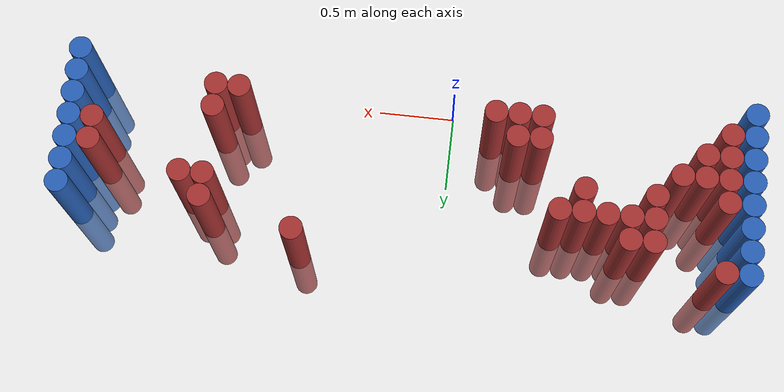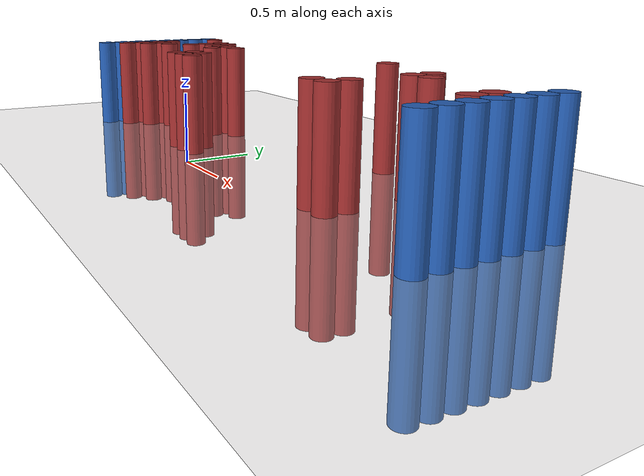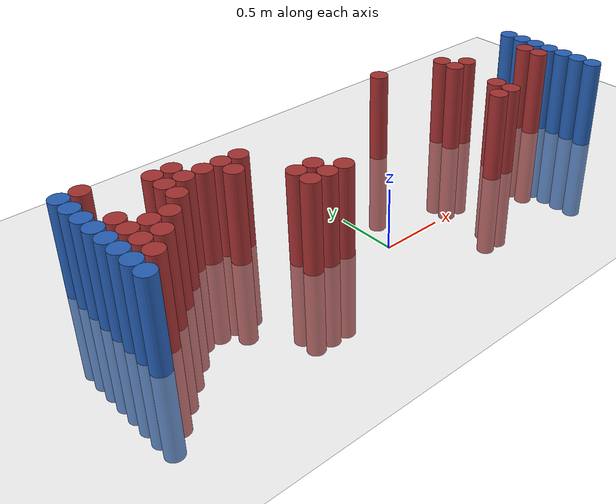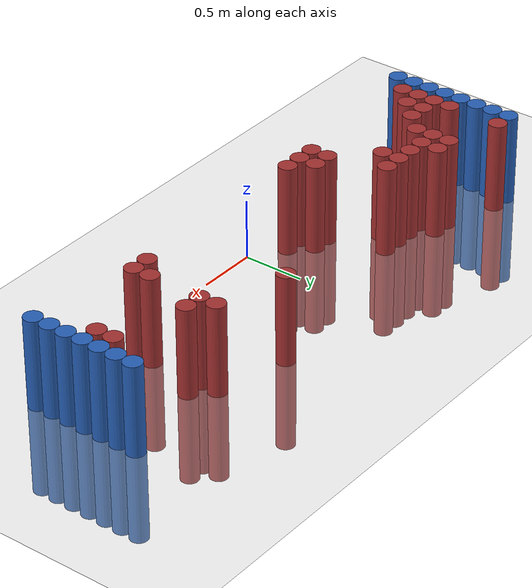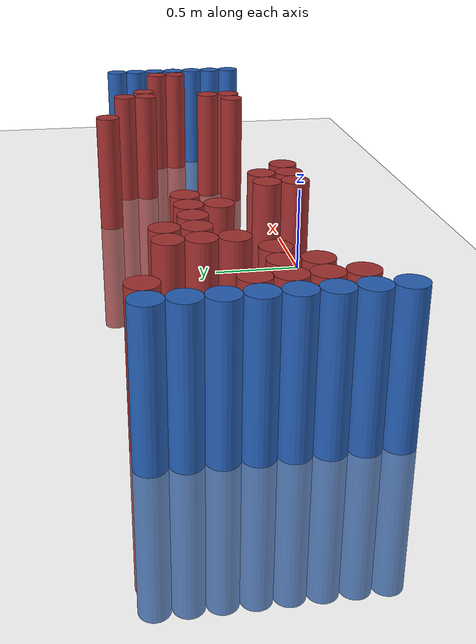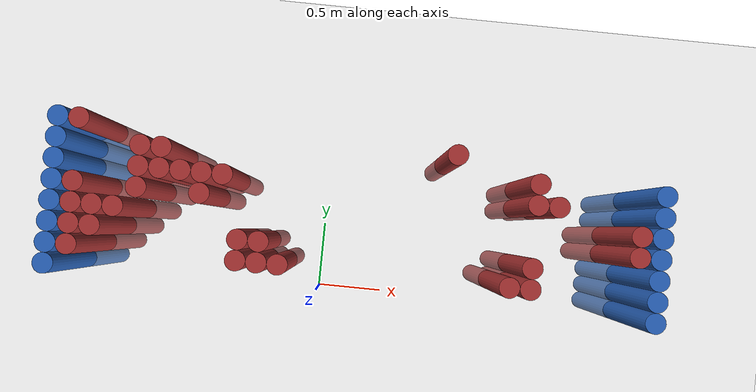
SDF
<sdf version="1.6">
 <world name="default">
  <model name="ground_plane">
   <static>1</static>
   <link name="link">
    <collision name="collision">
     <geometry><plane><normal>0 0 1</normal><size>100 100</size></plane></geometry>
     <surface><friction><ode><mu>100</mu><mu2>50</mu2></ode></friction></surface>
    </collision>
    <visual name="visual">
     <cast_shadows>0</cast_shadows>
     <geometry><plane><normal>0 0 1</normal><size>100 100</size></plane></geometry>
     <material>
      <script><uri>file://media/materials/scripts/gazebo.material</uri><name>Gazebo/Grey</name></script>
     </material>
    </visual>
   </link>
  </model>
  <model name="unit_cylinder_94">
   <static>1</static>
   <pose>2.425000 0.025000 0.000000 0.000000 0.000000 0.000000</pose>
   <link name="link">
    <inertial>
     <mass>1</mass>
     <inertia><ixx>0.145833</ixx><ixy>0</ixy><ixz>0</ixz><iyy>0.145833</iyy><iyz>0</iyz><izz>0.125</izz></inertia>
    </inertial>
    <collision name="collision">
     <geometry><cylinder><radius>0.075000</radius><length>1.5</length></cylinder></geometry>
    </collision>
    <visual name="visual">
     <geometry><cylinder><radius>0.075000</radius><length>1.5</length></cylinder></geometry>
     <material>
      <ambient>0.152000 0.379000 0.720000 1</ambient>
      <diffuse>0.152000 0.379000 0.720000 1</diffuse>
     </material>
     <material>
      <script><name>Gazebo/Grey</name><uri>file://media/materials/scripts/gazebo.material</uri></script>
     </material>
    </visual>
   </link>
  </model>
  <model name="unit_cylinder_95">
   <static>1</static>
   <pose>-1.925000 0.025000 0.000000 0.000000 0.000000 0.000000</pose>
   <link name="link">
    <inertial>
     <mass>1</mass>
     <inertia><ixx>0.145833</ixx><ixy>0</ixy><ixz>0</ixz><iyy>0.145833</iyy><iyz>0</iyz><izz>0.125</izz></inertia>
    </inertial>
    <collision name="collision">
     <geometry><cylinder><radius>0.075000</radius><length>1.5</length></cylinder></geometry>
    </collision>
    <visual name="visual">
     <geometry><cylinder><radius>0.075000</radius><length>1.5</length></cylinder></geometry>
     <material>
      <ambient>0.152000 0.379000 0.720000 1</ambient>
      <diffuse>0.152000 0.379000 0.720000 1</diffuse>
     </material>
     <material>
      <script><name>Gazebo/Grey</name><uri>file://media/materials/scripts/gazebo.material</uri></script>
     </material>
    </visual>
   </link>
  </model>
  <model name="unit_cylinder_96">
   <static>1</static>
   <pose>-1.925000 0.175000 0.000000 0.000000 0.000000 0.000000</pose>
   <link name="link">
    <inertial>
     <mass>1</mass>
     <inertia><ixx>0.145833</ixx><ixy>0</ixy><ixz>0</ixz><iyy>0.145833</iyy><iyz>0</iyz><izz>0.125</izz></inertia>
    </inertial>
    <collision name="collision">
     <geometry><cylinder><radius>0.075000</radius><length>1.5</length></cylinder></geometry>
    </collision>
    <visual name="visual">
     <geometry><cylinder><radius>0.075000</radius><length>1.5</length></cylinder></geometry>
     <material>
      <ambient>0.152000 0.379000 0.720000 1</ambient>
      <diffuse>0.152000 0.379000 0.720000 1</diffuse>
     </material>
     <material>
      <script><name>Gazebo/Grey</name><uri>file://media/materials/scripts/gazebo.material</uri></script>
     </material>
    </visual>
   </link>
  </model>
  <model name="unit_cylinder_97">
   <static>1</static>
   <pose>-1.925000 0.325000 0.000000 0.000000 0.000000 0.000000</pose>
   <link name="link">
    <inertial>
     <mass>1</mass>
     <inertia><ixx>0.145833</ixx><ixy>0</ixy><ixz>0</ixz><iyy>0.145833</iyy><iyz>0</iyz><izz>0.125</izz></inertia>
    </inertial>
    <collision name="collision">
     <geometry><cylinder><radius>0.075000</radius><length>1.5</length></cylinder></geometry>
    </collision>
    <visual name="visual">
     <geometry><cylinder><radius>0.075000</radius><length>1.5</length></cylinder></geometry>
     <material>
      <ambient>0.152000 0.379000 0.720000 1</ambient>
      <diffuse>0.152000 0.379000 0.720000 1</diffuse>
     </material>
     <material>
      <script><name>Gazebo/Grey</name><uri>file://media/materials/scripts/gazebo.material</uri></script>
     </material>
    </visual>
   </link>
  </model>
  <model name="unit_cylinder_98">
   <static>1</static>
   <pose>-1.925000 0.475000 0.000000 0.000000 0.000000 0.000000</pose>
   <link name="link">
    <inertial>
     <mass>1</mass>
     <inertia><ixx>0.145833</ixx><ixy>0</ixy><ixz>0</ixz><iyy>0.145833</iyy><iyz>0</iyz><izz>0.125</izz></inertia>
    </inertial>
    <collision name="collision">
     <geometry><cylinder><radius>0.075000</radius><length>1.5</length></cylinder></geometry>
    </collision>
    <visual name="visual">
     <geometry><cylinder><radius>0.075000</radius><length>1.5</length></cylinder></geometry>
     <material>
      <ambient>0.152000 0.379000 0.720000 1</ambient>
      <diffuse>0.152000 0.379000 0.720000 1</diffuse>
     </material>
     <material>
      <script><name>Gazebo/Grey</name><uri>file://media/materials/scripts/gazebo.material</uri></script>
     </material>
    </visual>
   </link>
  </model>
  <model name="unit_cylinder_99">
   <static>1</static>
   <pose>-1.925000 0.625000 0.000000 0.000000 0.000000 0.000000</pose>
   <link name="link">
    <inertial>
     <mass>1</mass>
     <inertia><ixx>0.145833</ixx><ixy>0</ixy><ixz>0</ixz><iyy>0.145833</iyy><iyz>0</iyz><izz>0.125</izz></inertia>
    </inertial>
    <collision name="collision">
     <geometry><cylinder><radius>0.075000</radius><length>1.5</length></cylinder></geometry>
    </collision>
    <visual name="visual">
     <geometry><cylinder><radius>0.075000</radius><length>1.5</length></cylinder></geometry>
     <material>
      <ambient>0.152000 0.379000 0.720000 1</ambient>
      <diffuse>0.152000 0.379000 0.720000 1</diffuse>
     </material>
     <material>
      <script><name>Gazebo/Grey</name><uri>file://media/materials/scripts/gazebo.material</uri></script>
     </material>
    </visual>
   </link>
  </model>
  <model name="unit_cylinder_100">
   <static>1</static>
   <pose>-1.925000 0.775000 0.000000 0.000000 0.000000 0.000000</pose>
   <link name="link">
    <inertial>
     <mass>1</mass>
     <inertia><ixx>0.145833</ixx><ixy>0</ixy><ixz>0</ixz><iyy>0.145833</iyy><iyz>0</iyz><izz>0.125</izz></inertia>
    </inertial>
    <collision name="collision">
     <geometry><cylinder><radius>0.075000</radius><length>1.5</length></cylinder></geometry>
    </collision>
    <visual name="visual">
     <geometry><cylinder><radius>0.075000</radius><length>1.5</length></cylinder></geometry>
     <material>
      <ambient>0.152000 0.379000 0.720000 1</ambient>
      <diffuse>0.152000 0.379000 0.720000 1</diffuse>
     </material>
     <material>
      <script><name>Gazebo/Grey</name><uri>file://media/materials/scripts/gazebo.material</uri></script>
     </material>
    </visual>
   </link>
  </model>
  <model name="unit_cylinder_101">
   <static>1</static>
   <pose>-1.925000 0.925000 0.000000 0.000000 0.000000 0.000000</pose>
   <link name="link">
    <inertial>
     <mass>1</mass>
     <inertia><ixx>0.145833</ixx><ixy>0</ixy><ixz>0</ixz><iyy>0.145833</iyy><iyz>0</iyz><izz>0.125</izz></inertia>
    </inertial>
    <collision name="collision">
     <geometry><cylinder><radius>0.075000</radius><length>1.5</length></cylinder></geometry>
    </collision>
    <visual name="visual">
     <geometry><cylinder><radius>0.075000</radius><length>1.5</length></cylinder></geometry>
     <material>
      <ambient>0.152000 0.379000 0.720000 1</ambient>
      <diffuse>0.152000 0.379000 0.720000 1</diffuse>
     </material>
     <material>
      <script><name>Gazebo/Grey</name><uri>file://media/materials/scripts/gazebo.material</uri></script>
     </material>
    </visual>
   </link>
  </model>
  <model name="unit_cylinder_102">
   <static>1</static>
   <pose>-1.925000 1.075000 0.000000 0.000000 0.000000 0.000000</pose>
   <link name="link">
    <inertial>
     <mass>1</mass>
     <inertia><ixx>0.145833</ixx><ixy>0</ixy><ixz>0</ixz><iyy>0.145833</iyy><iyz>0</iyz><izz>0.125</izz></inertia>
    </inertial>
    <collision name="collision">
     <geometry><cylinder><radius>0.075000</radius><length>1.5</length></cylinder></geometry>
    </collision>
    <visual name="visual">
     <geometry><cylinder><radius>0.075000</radius><length>1.5</length></cylinder></geometry>
     <material>
      <ambient>0.152000 0.379000 0.720000 1</ambient>
      <diffuse>0.152000 0.379000 0.720000 1</diffuse>
     </material>
     <material>
      <script><name>Gazebo/Grey</name><uri>file://media/materials/scripts/gazebo.material</uri></script>
     </material>
    </visual>
   </link>
  </model>
  <model name="unit_cylinder_126">
   <static>1</static>
   <pose>-1.775000 0.175000 0.000000 0.000000 0.000000 0.000000</pose>
   <link name="link">
    <inertial>
     <mass>1</mass>
     <inertia><ixx>0.145833</ixx><ixy>0</ixy><ixz>0</ixz><iyy>0.145833</iyy><iyz>0</iyz><izz>0.125</izz></inertia>
    </inertial>
    <collision name="collision">
     <geometry><cylinder><radius>0.075000</radius><length>1.5</length></cylinder></geometry>
    </collision>
    <visual name="visual">
     <geometry><cylinder><radius>0.075000</radius><length>1.5</length></cylinder></geometry>
     <material>
      <ambient>0.648000 0.192000 0.192000 1</ambient>
      <diffuse>0.648000 0.192000 0.192000 1</diffuse>
     </material>
     <material>
      <script><name>Gazebo/Grey</name><uri>file://media/materials/scripts/gazebo.material</uri></script>
     </material>
    </visual>
   </link>
  </model>
  <model name="unit_cylinder_127">
   <static>1</static>
   <pose>-1.775000 0.325000 0.000000 0.000000 0.000000 0.000000</pose>
   <link name="link">
    <inertial>
     <mass>1</mass>
     <inertia><ixx>0.145833</ixx><ixy>0</ixy><ixz>0</ixz><iyy>0.145833</iyy><iyz>0</iyz><izz>0.125</izz></inertia>
    </inertial>
    <collision name="collision">
     <geometry><cylinder><radius>0.075000</radius><length>1.5</length></cylinder></geometry>
    </collision>
    <visual name="visual">
     <geometry><cylinder><radius>0.075000</radius><length>1.5</length></cylinder></geometry>
     <material>
      <ambient>0.648000 0.192000 0.192000 1</ambient>
      <diffuse>0.648000 0.192000 0.192000 1</diffuse>
     </material>
     <material>
      <script><name>Gazebo/Grey</name><uri>file://media/materials/scripts/gazebo.material</uri></script>
     </material>
    </visual>
   </link>
  </model>
  <model name="unit_cylinder_128">
   <static>1</static>
   <pose>-1.775000 0.475000 0.000000 0.000000 0.000000 0.000000</pose>
   <link name="link">
    <inertial>
     <mass>1</mass>
     <inertia><ixx>0.145833</ixx><ixy>0</ixy><ixz>0</ixz><iyy>0.145833</iyy><iyz>0</iyz><izz>0.125</izz></inertia>
    </inertial>
    <collision name="collision">
     <geometry><cylinder><radius>0.075000</radius><length>1.5</length></cylinder></geometry>
    </collision>
    <visual name="visual">
     <geometry><cylinder><radius>0.075000</radius><length>1.5</length></cylinder></geometry>
     <material>
      <ambient>0.648000 0.192000 0.192000 1</ambient>
      <diffuse>0.648000 0.192000 0.192000 1</diffuse>
     </material>
     <material>
      <script><name>Gazebo/Grey</name><uri>file://media/materials/scripts/gazebo.material</uri></script>
     </material>
    </visual>
   </link>
  </model>
  <model name="unit_cylinder_129">
   <static>1</static>
   <pose>-1.775000 0.625000 0.000000 0.000000 0.000000 0.000000</pose>
   <link name="link">
    <inertial>
     <mass>1</mass>
     <inertia><ixx>0.145833</ixx><ixy>0</ixy><ixz>0</ixz><iyy>0.145833</iyy><iyz>0</iyz><izz>0.125</izz></inertia>
    </inertial>
    <collision name="collision">
     <geometry><cylinder><radius>0.075000</radius><length>1.5</length></cylinder></geometry>
    </collision>
    <visual name="visual">
     <geometry><cylinder><radius>0.075000</radius><length>1.5</length></cylinder></geometry>
     <material>
      <ambient>0.648000 0.192000 0.192000 1</ambient>
      <diffuse>0.648000 0.192000 0.192000 1</diffuse>
     </material>
     <material>
      <script><name>Gazebo/Grey</name><uri>file://media/materials/scripts/gazebo.material</uri></script>
     </material>
    </visual>
   </link>
  </model>
  <model name="unit_cylinder_130">
   <static>1</static>
   <pose>-1.775000 1.075000 0.000000 0.000000 0.000000 0.000000</pose>
   <link name="link">
    <inertial>
     <mass>1</mass>
     <inertia><ixx>0.145833</ixx><ixy>0</ixy><ixz>0</ixz><iyy>0.145833</iyy><iyz>0</iyz><izz>0.125</izz></inertia>
    </inertial>
    <collision name="collision">
     <geometry><cylinder><radius>0.075000</radius><length>1.5</length></cylinder></geometry>
    </collision>
    <visual name="visual">
     <geometry><cylinder><radius>0.075000</radius><length>1.5</length></cylinder></geometry>
     <material>
      <ambient>0.648000 0.192000 0.192000 1</ambient>
      <diffuse>0.648000 0.192000 0.192000 1</diffuse>
     </material>
     <material>
      <script><name>Gazebo/Grey</name><uri>file://media/materials/scripts/gazebo.material</uri></script>
     </material>
    </visual>
   </link>
  </model>
  <model name="unit_cylinder_144">
   <static>1</static>
   <pose>-1.625000 0.325000 0.000000 0.000000 0.000000 0.000000</pose>
   <link name="link">
    <inertial>
     <mass>1</mass>
     <inertia><ixx>0.145833</ixx><ixy>0</ixy><ixz>0</ixz><iyy>0.145833</iyy><iyz>0</iyz><izz>0.125</izz></inertia>
    </inertial>
    <collision name="collision">
     <geometry><cylinder><radius>0.075000</radius><length>1.5</length></cylinder></geometry>
    </collision>
    <visual name="visual">
     <geometry><cylinder><radius>0.075000</radius><length>1.5</length></cylinder></geometry>
     <material>
      <ambient>0.648000 0.192000 0.192000 1</ambient>
      <diffuse>0.648000 0.192000 0.192000 1</diffuse>
     </material>
     <material>
      <script><name>Gazebo/Grey</name><uri>file://media/materials/scripts/gazebo.material</uri></script>
     </material>
    </visual>
   </link>
  </model>
  <model name="unit_cylinder_145">
   <static>1</static>
   <pose>-1.625000 0.475000 0.000000 0.000000 0.000000 0.000000</pose>
   <link name="link">
    <inertial>
     <mass>1</mass>
     <inertia><ixx>0.145833</ixx><ixy>0</ixy><ixz>0</ixz><iyy>0.145833</iyy><iyz>0</iyz><izz>0.125</izz></inertia>
    </inertial>
    <collision name="collision">
     <geometry><cylinder><radius>0.075000</radius><length>1.5</length></cylinder></geometry>
    </collision>
    <visual name="visual">
     <geometry><cylinder><radius>0.075000</radius><length>1.5</length></cylinder></geometry>
     <material>
      <ambient>0.648000 0.192000 0.192000 1</ambient>
      <diffuse>0.648000 0.192000 0.192000 1</diffuse>
     </material>
     <material>
      <script><name>Gazebo/Grey</name><uri>file://media/materials/scripts/gazebo.material</uri></script>
     </material>
    </visual>
   </link>
  </model>
  <model name="unit_cylinder_155">
   <static>1</static>
   <pose>-1.475000 0.475000 0.000000 0.000000 0.000000 0.000000</pose>
   <link name="link">
    <inertial>
     <mass>1</mass>
     <inertia><ixx>0.145833</ixx><ixy>0</ixy><ixz>0</ixz><iyy>0.145833</iyy><iyz>0</iyz><izz>0.125</izz></inertia>
    </inertial>
    <collision name="collision">
     <geometry><cylinder><radius>0.075000</radius><length>1.5</length></cylinder></geometry>
    </collision>
    <visual name="visual">
     <geometry><cylinder><radius>0.075000</radius><length>1.5</length></cylinder></geometry>
     <material>
      <ambient>0.648000 0.192000 0.192000 1</ambient>
      <diffuse>0.648000 0.192000 0.192000 1</diffuse>
     </material>
     <material>
      <script><name>Gazebo/Grey</name><uri>file://media/materials/scripts/gazebo.material</uri></script>
     </material>
    </visual>
   </link>
  </model>
  <model name="unit_cylinder_162">
   <static>1</static>
   <pose>-1.325000 0.625000 0.000000 0.000000 0.000000 0.000000</pose>
   <link name="link">
    <inertial>
     <mass>1</mass>
     <inertia><ixx>0.145833</ixx><ixy>0</ixy><ixz>0</ixz><iyy>0.145833</iyy><iyz>0</iyz><izz>0.125</izz></inertia>
    </inertial>
    <collision name="collision">
     <geometry><cylinder><radius>0.075000</radius><length>1.5</length></cylinder></geometry>
    </collision>
    <visual name="visual">
     <geometry><cylinder><radius>0.075000</radius><length>1.5</length></cylinder></geometry>
     <material>
      <ambient>0.648000 0.192000 0.192000 1</ambient>
      <diffuse>0.648000 0.192000 0.192000 1</diffuse>
     </material>
     <material>
      <script><name>Gazebo/Grey</name><uri>file://media/materials/scripts/gazebo.material</uri></script>
     </material>
    </visual>
   </link>
  </model>
  <model name="unit_cylinder_163">
   <static>1</static>
   <pose>-1.325000 0.775000 0.000000 0.000000 0.000000 0.000000</pose>
   <link name="link">
    <inertial>
     <mass>1</mass>
     <inertia><ixx>0.145833</ixx><ixy>0</ixy><ixz>0</ixz><iyy>0.145833</iyy><iyz>0</iyz><izz>0.125</izz></inertia>
    </inertial>
    <collision name="collision">
     <geometry><cylinder><radius>0.075000</radius><length>1.5</length></cylinder></geometry>
    </collision>
    <visual name="visual">
     <geometry><cylinder><radius>0.075000</radius><length>1.5</length></cylinder></geometry>
     <material>
      <ambient>0.648000 0.192000 0.192000 1</ambient>
      <diffuse>0.648000 0.192000 0.192000 1</diffuse>
     </material>
     <material>
      <script><name>Gazebo/Grey</name><uri>file://media/materials/scripts/gazebo.material</uri></script>
     </material>
    </visual>
   </link>
  </model>
  <model name="unit_cylinder_164">
   <static>1</static>
   <pose>-1.325000 0.925000 0.000000 0.000000 0.000000 0.000000</pose>
   <link name="link">
    <inertial>
     <mass>1</mass>
     <inertia><ixx>0.145833</ixx><ixy>0</ixy><ixz>0</ixz><iyy>0.145833</iyy><iyz>0</iyz><izz>0.125</izz></inertia>
    </inertial>
    <collision name="collision">
     <geometry><cylinder><radius>0.075000</radius><length>1.5</length></cylinder></geometry>
    </collision>
    <visual name="visual">
     <geometry><cylinder><radius>0.075000</radius><length>1.5</length></cylinder></geometry>
     <material>
      <ambient>0.648000 0.192000 0.192000 1</ambient>
      <diffuse>0.648000 0.192000 0.192000 1</diffuse>
     </material>
     <material>
      <script><name>Gazebo/Grey</name><uri>file://media/materials/scripts/gazebo.material</uri></script>
     </material>
    </visual>
   </link>
  </model>
  <model name="unit_cylinder_170">
   <static>1</static>
   <pose>-1.175000 0.775000 0.000000 0.000000 0.000000 0.000000</pose>
   <link name="link">
    <inertial>
     <mass>1</mass>
     <inertia><ixx>0.145833</ixx><ixy>0</ixy><ixz>0</ixz><iyy>0.145833</iyy><iyz>0</iyz><izz>0.125</izz></inertia>
    </inertial>
    <collision name="collision">
     <geometry><cylinder><radius>0.075000</radius><length>1.5</length></cylinder></geometry>
    </collision>
    <visual name="visual">
     <geometry><cylinder><radius>0.075000</radius><length>1.5</length></cylinder></geometry>
     <material>
      <ambient>0.648000 0.192000 0.192000 1</ambient>
      <diffuse>0.648000 0.192000 0.192000 1</diffuse>
     </material>
     <material>
      <script><name>Gazebo/Grey</name><uri>file://media/materials/scripts/gazebo.material</uri></script>
     </material>
    </visual>
   </link>
  </model>
  <model name="unit_cylinder_171">
   <static>1</static>
   <pose>-1.175000 0.925000 0.000000 0.000000 0.000000 0.000000</pose>
   <link name="link">
    <inertial>
     <mass>1</mass>
     <inertia><ixx>0.145833</ixx><ixy>0</ixy><ixz>0</ixz><iyy>0.145833</iyy><iyz>0</iyz><izz>0.125</izz></inertia>
    </inertial>
    <collision name="collision">
     <geometry><cylinder><radius>0.075000</radius><length>1.5</length></cylinder></geometry>
    </collision>
    <visual name="visual">
     <geometry><cylinder><radius>0.075000</radius><length>1.5</length></cylinder></geometry>
     <material>
      <ambient>0.648000 0.192000 0.192000 1</ambient>
      <diffuse>0.648000 0.192000 0.192000 1</diffuse>
     </material>
     <material>
      <script><name>Gazebo/Grey</name><uri>file://media/materials/scripts/gazebo.material</uri></script>
     </material>
    </visual>
   </link>
  </model>
  <model name="unit_cylinder_174">
   <static>1</static>
   <pose>-1.025000 0.775000 0.000000 0.000000 0.000000 0.000000</pose>
   <link name="link">
    <inertial>
     <mass>1</mass>
     <inertia><ixx>0.145833</ixx><ixy>0</ixy><ixz>0</ixz><iyy>0.145833</iyy><iyz>0</iyz><izz>0.125</izz></inertia>
    </inertial>
    <collision name="collision">
     <geometry><cylinder><radius>0.075000</radius><length>1.5</length></cylinder></geometry>
    </collision>
    <visual name="visual">
     <geometry><cylinder><radius>0.075000</radius><length>1.5</length></cylinder></geometry>
     <material>
      <ambient>0.648000 0.192000 0.192000 1</ambient>
      <diffuse>0.648000 0.192000 0.192000 1</diffuse>
     </material>
     <material>
      <script><name>Gazebo/Grey</name><uri>file://media/materials/scripts/gazebo.material</uri></script>
     </material>
    </visual>
   </link>
  </model>
  <model name="unit_cylinder_176">
   <static>1</static>
   <pose>-0.875000 0.625000 0.000000 0.000000 0.000000 0.000000</pose>
   <link name="link">
    <inertial>
     <mass>1</mass>
     <inertia><ixx>0.145833</ixx><ixy>0</ixy><ixz>0</ixz><iyy>0.145833</iyy><iyz>0</iyz><izz>0.125</izz></inertia>
    </inertial>
    <collision name="collision">
     <geometry><cylinder><radius>0.075000</radius><length>1.5</length></cylinder></geometry>
    </collision>
    <visual name="visual">
     <geometry><cylinder><radius>0.075000</radius><length>1.5</length></cylinder></geometry>
     <material>
      <ambient>0.648000 0.192000 0.192000 1</ambient>
      <diffuse>0.648000 0.192000 0.192000 1</diffuse>
     </material>
     <material>
      <script><name>Gazebo/Grey</name><uri>file://media/materials/scripts/gazebo.material</uri></script>
     </material>
    </visual>
   </link>
  </model>
  <model name="unit_cylinder_177">
   <static>1</static>
   <pose>-0.875000 0.775000 0.000000 0.000000 0.000000 0.000000</pose>
   <link name="link">
    <inertial>
     <mass>1</mass>
     <inertia><ixx>0.145833</ixx><ixy>0</ixy><ixz>0</ixz><iyy>0.145833</iyy><iyz>0</iyz><izz>0.125</izz></inertia>
    </inertial>
    <collision name="collision">
     <geometry><cylinder><radius>0.075000</radius><length>1.5</length></cylinder></geometry>
    </collision>
    <visual name="visual">
     <geometry><cylinder><radius>0.075000</radius><length>1.5</length></cylinder></geometry>
     <material>
      <ambient>0.648000 0.192000 0.192000 1</ambient>
      <diffuse>0.648000 0.192000 0.192000 1</diffuse>
     </material>
     <material>
      <script><name>Gazebo/Grey</name><uri>file://media/materials/scripts/gazebo.material</uri></script>
     </material>
    </visual>
   </link>
  </model>
  <model name="unit_cylinder_182">
   <static>1</static>
   <pose>-0.725000 0.775000 0.000000 0.000000 0.000000 0.000000</pose>
   <link name="link">
    <inertial>
     <mass>1</mass>
     <inertia><ixx>0.145833</ixx><ixy>0</ixy><ixz>0</ixz><iyy>0.145833</iyy><iyz>0</iyz><izz>0.125</izz></inertia>
    </inertial>
    <collision name="collision">
     <geometry><cylinder><radius>0.075000</radius><length>1.5</length></cylinder></geometry>
    </collision>
    <visual name="visual">
     <geometry><cylinder><radius>0.075000</radius><length>1.5</length></cylinder></geometry>
     <material>
      <ambient>0.648000 0.192000 0.192000 1</ambient>
      <diffuse>0.648000 0.192000 0.192000 1</diffuse>
     </material>
     <material>
      <script><name>Gazebo/Grey</name><uri>file://media/materials/scripts/gazebo.material</uri></script>
     </material>
    </visual>
   </link>
  </model>
  <model name="unit_cylinder_186">
   <static>1</static>
   <pose>-0.575000 0.175000 0.000000 0.000000 0.000000 0.000000</pose>
   <link name="link">
    <inertial>
     <mass>1</mass>
     <inertia><ixx>0.145833</ixx><ixy>0</ixy><ixz>0</ixz><iyy>0.145833</iyy><iyz>0</iyz><izz>0.125</izz></inertia>
    </inertial>
    <collision name="collision">
     <geometry><cylinder><radius>0.075000</radius><length>1.5</length></cylinder></geometry>
    </collision>
    <visual name="visual">
     <geometry><cylinder><radius>0.075000</radius><length>1.5</length></cylinder></geometry>
     <material>
      <ambient>0.648000 0.192000 0.192000 1</ambient>
      <diffuse>0.648000 0.192000 0.192000 1</diffuse>
     </material>
     <material>
      <script><name>Gazebo/Grey</name><uri>file://media/materials/scripts/gazebo.material</uri></script>
     </material>
    </visual>
   </link>
  </model>
  <model name="unit_cylinder_187">
   <static>1</static>
   <pose>-0.575000 0.325000 0.000000 0.000000 0.000000 0.000000</pose>
   <link name="link">
    <inertial>
     <mass>1</mass>
     <inertia><ixx>0.145833</ixx><ixy>0</ixy><ixz>0</ixz><iyy>0.145833</iyy><iyz>0</iyz><izz>0.125</izz></inertia>
    </inertial>
    <collision name="collision">
     <geometry><cylinder><radius>0.075000</radius><length>1.5</length></cylinder></geometry>
    </collision>
    <visual name="visual">
     <geometry><cylinder><radius>0.075000</radius><length>1.5</length></cylinder></geometry>
     <material>
      <ambient>0.648000 0.192000 0.192000 1</ambient>
      <diffuse>0.648000 0.192000 0.192000 1</diffuse>
     </material>
     <material>
      <script><name>Gazebo/Grey</name><uri>file://media/materials/scripts/gazebo.material</uri></script>
     </material>
    </visual>
   </link>
  </model>
  <model name="unit_cylinder_189">
   <static>1</static>
   <pose>-0.425000 0.175000 0.000000 0.000000 0.000000 0.000000</pose>
   <link name="link">
    <inertial>
     <mass>1</mass>
     <inertia><ixx>0.145833</ixx><ixy>0</ixy><ixz>0</ixz><iyy>0.145833</iyy><iyz>0</iyz><izz>0.125</izz></inertia>
    </inertial>
    <collision name="collision">
     <geometry><cylinder><radius>0.075000</radius><length>1.5</length></cylinder></geometry>
    </collision>
    <visual name="visual">
     <geometry><cylinder><radius>0.075000</radius><length>1.5</length></cylinder></geometry>
     <material>
      <ambient>0.648000 0.192000 0.192000 1</ambient>
      <diffuse>0.648000 0.192000 0.192000 1</diffuse>
     </material>
     <material>
      <script><name>Gazebo/Grey</name><uri>file://media/materials/scripts/gazebo.material</uri></script>
     </material>
    </visual>
   </link>
  </model>
  <model name="unit_cylinder_190">
   <static>1</static>
   <pose>-0.425000 0.325000 0.000000 0.000000 0.000000 0.000000</pose>
   <link name="link">
    <inertial>
     <mass>1</mass>
     <inertia><ixx>0.145833</ixx><ixy>0</ixy><ixz>0</ixz><iyy>0.145833</iyy><iyz>0</iyz><izz>0.125</izz></inertia>
    </inertial>
    <collision name="collision">
     <geometry><cylinder><radius>0.075000</radius><length>1.5</length></cylinder></geometry>
    </collision>
    <visual name="visual">
     <geometry><cylinder><radius>0.075000</radius><length>1.5</length></cylinder></geometry>
     <material>
      <ambient>0.648000 0.192000 0.192000 1</ambient>
      <diffuse>0.648000 0.192000 0.192000 1</diffuse>
     </material>
     <material>
      <script><name>Gazebo/Grey</name><uri>file://media/materials/scripts/gazebo.material</uri></script>
     </material>
    </visual>
   </link>
  </model>
  <model name="unit_cylinder_193">
   <static>1</static>
   <pose>-0.275000 0.175000 0.000000 0.000000 0.000000 0.000000</pose>
   <link name="link">
    <inertial>
     <mass>1</mass>
     <inertia><ixx>0.145833</ixx><ixy>0</ixy><ixz>0</ixz><iyy>0.145833</iyy><iyz>0</iyz><izz>0.125</izz></inertia>
    </inertial>
    <collision name="collision">
     <geometry><cylinder><radius>0.075000</radius><length>1.5</length></cylinder></geometry>
    </collision>
    <visual name="visual">
     <geometry><cylinder><radius>0.075000</radius><length>1.5</length></cylinder></geometry>
     <material>
      <ambient>0.648000 0.192000 0.192000 1</ambient>
      <diffuse>0.648000 0.192000 0.192000 1</diffuse>
     </material>
     <material>
      <script><name>Gazebo/Grey</name><uri>file://media/materials/scripts/gazebo.material</uri></script>
     </material>
    </visual>
   </link>
  </model>
  <model name="unit_cylinder_204">
   <static>1</static>
   <pose>0.925000 1.075000 0.000000 0.000000 0.000000 0.000000</pose>
   <link name="link">
    <inertial>
     <mass>1</mass>
     <inertia><ixx>0.145833</ixx><ixy>0</ixy><ixz>0</ixz><iyy>0.145833</iyy><iyz>0</iyz><izz>0.125</izz></inertia>
    </inertial>
    <collision name="collision">
     <geometry><cylinder><radius>0.075000</radius><length>1.5</length></cylinder></geometry>
    </collision>
    <visual name="visual">
     <geometry><cylinder><radius>0.075000</radius><length>1.5</length></cylinder></geometry>
     <material>
      <ambient>0.648000 0.192000 0.192000 1</ambient>
      <diffuse>0.648000 0.192000 0.192000 1</diffuse>
     </material>
     <material>
      <script><name>Gazebo/Grey</name><uri>file://media/materials/scripts/gazebo.material</uri></script>
     </material>
    </visual>
   </link>
  </model>
  <model name="unit_cylinder_216">
   <static>1</static>
   <pose>1.375000 0.175000 0.000000 0.000000 0.000000 0.000000</pose>
   <link name="link">
    <inertial>
     <mass>1</mass>
     <inertia><ixx>0.145833</ixx><ixy>0</ixy><ixz>0</ixz><iyy>0.145833</iyy><iyz>0</iyz><izz>0.125</izz></inertia>
    </inertial>
    <collision name="collision">
     <geometry><cylinder><radius>0.075000</radius><length>1.5</length></cylinder></geometry>
    </collision>
    <visual name="visual">
     <geometry><cylinder><radius>0.075000</radius><length>1.5</length></cylinder></geometry>
     <material>
      <ambient>0.648000 0.192000 0.192000 1</ambient>
      <diffuse>0.648000 0.192000 0.192000 1</diffuse>
     </material>
     <material>
      <script><name>Gazebo/Grey</name><uri>file://media/materials/scripts/gazebo.material</uri></script>
     </material>
    </visual>
   </link>
  </model>
  <model name="unit_cylinder_221">
   <static>1</static>
   <pose>1.525000 0.175000 0.000000 0.000000 0.000000 0.000000</pose>
   <link name="link">
    <inertial>
     <mass>1</mass>
     <inertia><ixx>0.145833</ixx><ixy>0</ixy><ixz>0</ixz><iyy>0.145833</iyy><iyz>0</iyz><izz>0.125</izz></inertia>
    </inertial>
    <collision name="collision">
     <geometry><cylinder><radius>0.075000</radius><length>1.5</length></cylinder></geometry>
    </collision>
    <visual name="visual">
     <geometry><cylinder><radius>0.075000</radius><length>1.5</length></cylinder></geometry>
     <material>
      <ambient>0.648000 0.192000 0.192000 1</ambient>
      <diffuse>0.648000 0.192000 0.192000 1</diffuse>
     </material>
     <material>
      <script><name>Gazebo/Grey</name><uri>file://media/materials/scripts/gazebo.material</uri></script>
     </material>
    </visual>
   </link>
  </model>
  <model name="unit_cylinder_222">
   <static>1</static>
   <pose>1.525000 0.325000 0.000000 0.000000 0.000000 0.000000</pose>
   <link name="link">
    <inertial>
     <mass>1</mass>
     <inertia><ixx>0.145833</ixx><ixy>0</ixy><ixz>0</ixz><iyy>0.145833</iyy><iyz>0</iyz><izz>0.125</izz></inertia>
    </inertial>
    <collision name="collision">
     <geometry><cylinder><radius>0.075000</radius><length>1.5</length></cylinder></geometry>
    </collision>
    <visual name="visual">
     <geometry><cylinder><radius>0.075000</radius><length>1.5</length></cylinder></geometry>
     <material>
      <ambient>0.648000 0.192000 0.192000 1</ambient>
      <diffuse>0.648000 0.192000 0.192000 1</diffuse>
     </material>
     <material>
      <script><name>Gazebo/Grey</name><uri>file://media/materials/scripts/gazebo.material</uri></script>
     </material>
    </visual>
   </link>
  </model>
  <model name="unit_cylinder_223">
   <static>1</static>
   <pose>1.525000 0.775000 0.000000 0.000000 0.000000 0.000000</pose>
   <link name="link">
    <inertial>
     <mass>1</mass>
     <inertia><ixx>0.145833</ixx><ixy>0</ixy><ixz>0</ixz><iyy>0.145833</iyy><iyz>0</iyz><izz>0.125</izz></inertia>
    </inertial>
    <collision name="collision">
     <geometry><cylinder><radius>0.075000</radius><length>1.5</length></cylinder></geometry>
    </collision>
    <visual name="visual">
     <geometry><cylinder><radius>0.075000</radius><length>1.5</length></cylinder></geometry>
     <material>
      <ambient>0.648000 0.192000 0.192000 1</ambient>
      <diffuse>0.648000 0.192000 0.192000 1</diffuse>
     </material>
     <material>
      <script><name>Gazebo/Grey</name><uri>file://media/materials/scripts/gazebo.material</uri></script>
     </material>
    </visual>
   </link>
  </model>
  <model name="unit_cylinder_224">
   <static>1</static>
   <pose>1.525000 0.925000 0.000000 0.000000 0.000000 0.000000</pose>
   <link name="link">
    <inertial>
     <mass>1</mass>
     <inertia><ixx>0.145833</ixx><ixy>0</ixy><ixz>0</ixz><iyy>0.145833</iyy><iyz>0</iyz><izz>0.125</izz></inertia>
    </inertial>
    <collision name="collision">
     <geometry><cylinder><radius>0.075000</radius><length>1.5</length></cylinder></geometry>
    </collision>
    <visual name="visual">
     <geometry><cylinder><radius>0.075000</radius><length>1.5</length></cylinder></geometry>
     <material>
      <ambient>0.648000 0.192000 0.192000 1</ambient>
      <diffuse>0.648000 0.192000 0.192000 1</diffuse>
     </material>
     <material>
      <script><name>Gazebo/Grey</name><uri>file://media/materials/scripts/gazebo.material</uri></script>
     </material>
    </visual>
   </link>
  </model>
  <model name="unit_cylinder_226">
   <static>1</static>
   <pose>1.675000 0.775000 0.000000 0.000000 0.000000 0.000000</pose>
   <link name="link">
    <inertial>
     <mass>1</mass>
     <inertia><ixx>0.145833</ixx><ixy>0</ixy><ixz>0</ixz><iyy>0.145833</iyy><iyz>0</iyz><izz>0.125</izz></inertia>
    </inertial>
    <collision name="collision">
     <geometry><cylinder><radius>0.075000</radius><length>1.5</length></cylinder></geometry>
    </collision>
    <visual name="visual">
     <geometry><cylinder><radius>0.075000</radius><length>1.5</length></cylinder></geometry>
     <material>
      <ambient>0.648000 0.192000 0.192000 1</ambient>
      <diffuse>0.648000 0.192000 0.192000 1</diffuse>
     </material>
     <material>
      <script><name>Gazebo/Grey</name><uri>file://media/materials/scripts/gazebo.material</uri></script>
     </material>
    </visual>
   </link>
  </model>
  <model name="unit_cylinder_238">
   <static>1</static>
   <pose>2.275000 0.475000 0.000000 0.000000 0.000000 0.000000</pose>
   <link name="link">
    <inertial>
     <mass>1</mass>
     <inertia><ixx>0.145833</ixx><ixy>0</ixy><ixz>0</ixz><iyy>0.145833</iyy><iyz>0</iyz><izz>0.125</izz></inertia>
    </inertial>
    <collision name="collision">
     <geometry><cylinder><radius>0.075000</radius><length>1.5</length></cylinder></geometry>
    </collision>
    <visual name="visual">
     <geometry><cylinder><radius>0.075000</radius><length>1.5</length></cylinder></geometry>
     <material>
      <ambient>0.648000 0.192000 0.192000 1</ambient>
      <diffuse>0.648000 0.192000 0.192000 1</diffuse>
     </material>
     <material>
      <script><name>Gazebo/Grey</name><uri>file://media/materials/scripts/gazebo.material</uri></script>
     </material>
    </visual>
   </link>
  </model>
  <model name="unit_cylinder_239">
   <static>1</static>
   <pose>2.275000 0.625000 0.000000 0.000000 0.000000 0.000000</pose>
   <link name="link">
    <inertial>
     <mass>1</mass>
     <inertia><ixx>0.145833</ixx><ixy>0</ixy><ixz>0</ixz><iyy>0.145833</iyy><iyz>0</iyz><izz>0.125</izz></inertia>
    </inertial>
    <collision name="collision">
     <geometry><cylinder><radius>0.075000</radius><length>1.5</length></cylinder></geometry>
    </collision>
    <visual name="visual">
     <geometry><cylinder><radius>0.075000</radius><length>1.5</length></cylinder></geometry>
     <material>
      <ambient>0.648000 0.192000 0.192000 1</ambient>
      <diffuse>0.648000 0.192000 0.192000 1</diffuse>
     </material>
     <material>
      <script><name>Gazebo/Grey</name><uri>file://media/materials/scripts/gazebo.material</uri></script>
     </material>
    </visual>
   </link>
  </model>
  <model name="unit_cylinder_250">
   <static>1</static>
   <pose>2.425000 0.175000 0.000000 0.000000 0.000000 0.000000</pose>
   <link name="link">
    <inertial>
     <mass>1</mass>
     <inertia><ixx>0.145833</ixx><ixy>0</ixy><ixz>0</ixz><iyy>0.145833</iyy><iyz>0</iyz><izz>0.125</izz></inertia>
    </inertial>
    <collision name="collision">
     <geometry><cylinder><radius>0.075000</radius><length>1.5</length></cylinder></geometry>
    </collision>
    <visual name="visual">
     <geometry><cylinder><radius>0.075000</radius><length>1.5</length></cylinder></geometry>
     <material>
      <ambient>0.152000 0.379000 0.720000 1</ambient>
      <diffuse>0.152000 0.379000 0.720000 1</diffuse>
     </material>
     <material>
      <script><name>Gazebo/Grey</name><uri>file://media/materials/scripts/gazebo.material</uri></script>
     </material>
    </visual>
   </link>
  </model>
  <model name="unit_cylinder_251">
   <static>1</static>
   <pose>2.425000 0.325000 0.000000 0.000000 0.000000 0.000000</pose>
   <link name="link">
    <inertial>
     <mass>1</mass>
     <inertia><ixx>0.145833</ixx><ixy>0</ixy><ixz>0</ixz><iyy>0.145833</iyy><iyz>0</iyz><izz>0.125</izz></inertia>
    </inertial>
    <collision name="collision">
     <geometry><cylinder><radius>0.075000</radius><length>1.5</length></cylinder></geometry>
    </collision>
    <visual name="visual">
     <geometry><cylinder><radius>0.075000</radius><length>1.5</length></cylinder></geometry>
     <material>
      <ambient>0.152000 0.379000 0.720000 1</ambient>
      <diffuse>0.152000 0.379000 0.720000 1</diffuse>
     </material>
     <material>
      <script><name>Gazebo/Grey</name><uri>file://media/materials/scripts/gazebo.material</uri></script>
     </material>
    </visual>
   </link>
  </model>
  <model name="unit_cylinder_252">
   <static>1</static>
   <pose>2.425000 0.475000 0.000000 0.000000 0.000000 0.000000</pose>
   <link name="link">
    <inertial>
     <mass>1</mass>
     <inertia><ixx>0.145833</ixx><ixy>0</ixy><ixz>0</ixz><iyy>0.145833</iyy><iyz>0</iyz><izz>0.125</izz></inertia>
    </inertial>
    <collision name="collision">
     <geometry><cylinder><radius>0.075000</radius><length>1.5</length></cylinder></geometry>
    </collision>
    <visual name="visual">
     <geometry><cylinder><radius>0.075000</radius><length>1.5</length></cylinder></geometry>
     <material>
      <ambient>0.152000 0.379000 0.720000 1</ambient>
      <diffuse>0.152000 0.379000 0.720000 1</diffuse>
     </material>
     <material>
      <script><name>Gazebo/Grey</name><uri>file://media/materials/scripts/gazebo.material</uri></script>
     </material>
    </visual>
   </link>
  </model>
  <model name="unit_cylinder_253">
   <static>1</static>
   <pose>2.425000 0.625000 0.000000 0.000000 0.000000 0.000000</pose>
   <link name="link">
    <inertial>
     <mass>1</mass>
     <inertia><ixx>0.145833</ixx><ixy>0</ixy><ixz>0</ixz><iyy>0.145833</iyy><iyz>0</iyz><izz>0.125</izz></inertia>
    </inertial>
    <collision name="collision">
     <geometry><cylinder><radius>0.075000</radius><length>1.5</length></cylinder></geometry>
    </collision>
    <visual name="visual">
     <geometry><cylinder><radius>0.075000</radius><length>1.5</length></cylinder></geometry>
     <material>
      <ambient>0.152000 0.379000 0.720000 1</ambient>
      <diffuse>0.152000 0.379000 0.720000 1</diffuse>
     </material>
     <material>
      <script><name>Gazebo/Grey</name><uri>file://media/materials/scripts/gazebo.material</uri></script>
     </material>
    </visual>
   </link>
  </model>
  <model name="unit_cylinder_254">
   <static>1</static>
   <pose>2.425000 0.775000 0.000000 0.000000 0.000000 0.000000</pose>
   <link name="link">
    <inertial>
     <mass>1</mass>
     <inertia><ixx>0.145833</ixx><ixy>0</ixy><ixz>0</ixz><iyy>0.145833</iyy><iyz>0</iyz><izz>0.125</izz></inertia>
    </inertial>
    <collision name="collision">
     <geometry><cylinder><radius>0.075000</radius><length>1.5</length></cylinder></geometry>
    </collision>
    <visual name="visual">
     <geometry><cylinder><radius>0.075000</radius><length>1.5</length></cylinder></geometry>
     <material>
      <ambient>0.152000 0.379000 0.720000 1</ambient>
      <diffuse>0.152000 0.379000 0.720000 1</diffuse>
     </material>
     <material>
      <script><name>Gazebo/Grey</name><uri>file://media/materials/scripts/gazebo.material</uri></script>
     </material>
    </visual>
   </link>
  </model>
  <model name="unit_cylinder_255">
   <static>1</static>
   <pose>2.425000 0.925000 0.000000 0.000000 0.000000 0.000000</pose>
   <link name="link">
    <inertial>
     <mass>1</mass>
     <inertia><ixx>0.145833</ixx><ixy>0</ixy><ixz>0</ixz><iyy>0.145833</iyy><iyz>0</iyz><izz>0.125</izz></inertia>
    </inertial>
    <collision name="collision">
     <geometry><cylinder><radius>0.075000</radius><length>1.5</length></cylinder></geometry>
    </collision>
    <visual name="visual">
     <geometry><cylinder><radius>0.075000</radius><length>1.5</length></cylinder></geometry>
     <material>
      <ambient>0.152000 0.379000 0.720000 1</ambient>
      <diffuse>0.152000 0.379000 0.720000 1</diffuse>
     </material>
     <material>
      <script><name>Gazebo/Grey</name><uri>file://media/materials/scripts/gazebo.material</uri></script>
     </material>
    </visual>
   </link>
  </model>
 </world>
</sdf>
